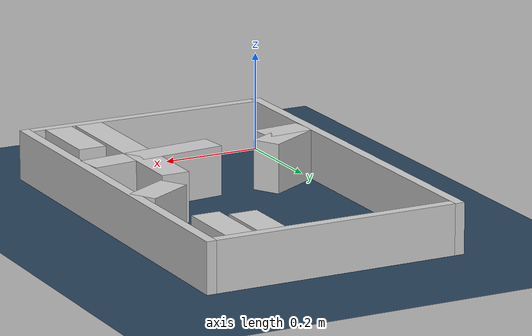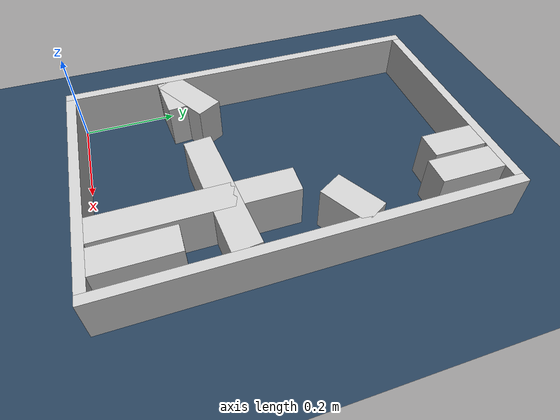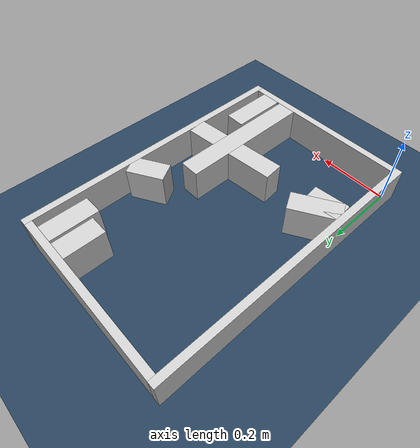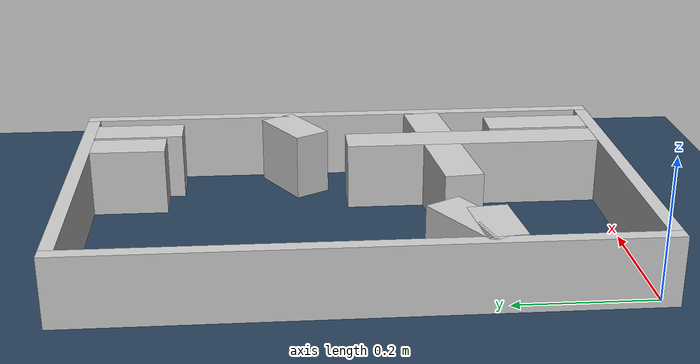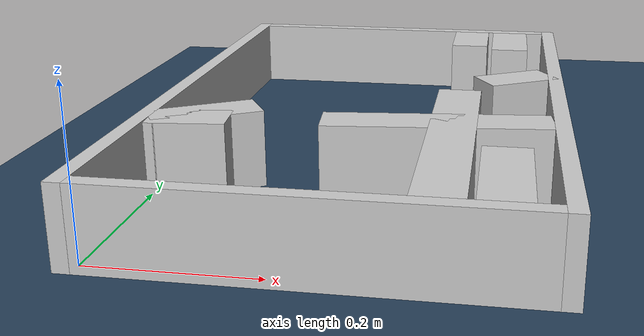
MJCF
<?xml version="1.0" ?>
<mujoco model="generated_real_template">
  <compiler angle="degree"/>
  <option timestep="0.002" integrator="implicitfast" iterations="100" cone="elliptic"/>
  <default>
    <geom density="1"/>
  </default>
  <asset>
    <texture builtin="gradient" height="3072" rgb1="0.3 0.5 0.7" rgb2="0 0 0" type="skybox" width="512"/>
    <texture builtin="checker" height="300" mark="edge" markrgb="0.8 0.8 0.8" name="groundplane" rgb1="0.2 0.3 0.4" rgb2="0.1 0.2 0.3" type="2d" width="300"/>
    <material name="groundplane" reflectance="0.2" texrepeat="5 5" texture="groundplane" texuniform="true"/>
  </asset>
  <worldbody>
    <light dir="0 0 -1" directional="true" pos="0 0 1.5"/>
    <geom name="floor" type="plane" condim="4" friction="0.5 0.005 0.001" material="groundplane" size="0 0 0.05"/>
    <body name="walls">
      <geom name="wall_boundary_left" type="box" condim="4" friction="1.0 0.005 0.0001" rgba="0.8 0.8 0.8 1" pos="-0.010000 0.387500 0.050000" euler="0 0 0.000000" size="0.010000 0.407500 0.050000"/>
      <geom name="wall_boundary_right" type="box" condim="4" friction="1.0 0.005 0.0001" rgba="0.8 0.8 0.8 1" pos="0.500000 0.387500 0.050000" euler="0 0 0.000000" size="0.010000 0.407500 0.050000"/>
      <geom name="wall_boundary_bottom" type="box" condim="4" friction="1.0 0.005 0.0001" rgba="0.8 0.8 0.8 1" pos="0.245000 -0.010000 0.050000" euler="0 0 0.000000" size="0.245000 0.010000 0.050000"/>
      <geom name="wall_boundary_top" type="box" condim="4" friction="1.0 0.005 0.0001" rgba="0.8 0.8 0.8 1" pos="0.245000 0.785000 0.050000" euler="0 0 0.000000" size="0.245000 0.010000 0.050000"/>
      <geom name="wall_inner_1_1" type="box" condim="4" friction="1.0 0.005 0.0001" rgba="0.8 0.8 0.8 1" pos="0.444736 0.464593 0.050000" euler="0 0 -149.679757" size="0.052437 0.028500 0.050000"/>
      <geom name="wall_inner_1_2" type="box" condim="4" friction="1.0 0.005 0.0001" rgba="0.8 0.8 0.8 1" pos="0.059532 0.239315 0.050000" euler="0 0 -149.679757" size="0.068965 0.028500 0.050000"/>
      <geom name="wall_inner_2_1" type="box" condim="4" friction="1.0 0.005 0.0001" rgba="0.8 0.8 0.8 1" pos="0.370106 0.193308 0.050000" euler="0 0 90.000000" size="0.193308 0.028500 0.050000"/>
      <geom name="wall_inner_2_2" type="box" condim="4" friction="1.0 0.005 0.0001" rgba="0.8 0.8 0.8 1" pos="0.370106 0.719111 0.050000" euler="0 0 90.000000" size="0.055889 0.028500 0.050000"/>
      <geom name="wall_inner_3_1" type="box" condim="4" friction="1.0 0.005 0.0001" rgba="0.8 0.8 0.8 1" pos="0.434900 0.078509 0.050000" euler="0 0 90.000000" size="0.078509 0.028500 0.050000"/>
      <geom name="wall_inner_3_2" type="box" condim="4" friction="1.0 0.005 0.0001" rgba="0.8 0.8 0.8 1" pos="0.434900 0.707643 0.050000" euler="0 0 90.000000" size="0.067357 0.028500 0.050000"/>
      <geom name="wall_inner_4_1" type="box" condim="4" friction="1.0 0.005 0.0001" rgba="0.8 0.8 0.8 1" pos="0.049116 0.212416 0.050000" euler="0 0 5.673010" size="0.049357 0.028500 0.050000"/>
      <geom name="wall_inner_4_2" type="box" condim="4" friction="1.0 0.005 0.0001" rgba="0.8 0.8 0.8 1" pos="0.350069 0.242312 0.050000" euler="0 0 5.673010" size="0.140619 0.028500 0.050000"/>
    </body>
  </worldbody>
</mujoco>
